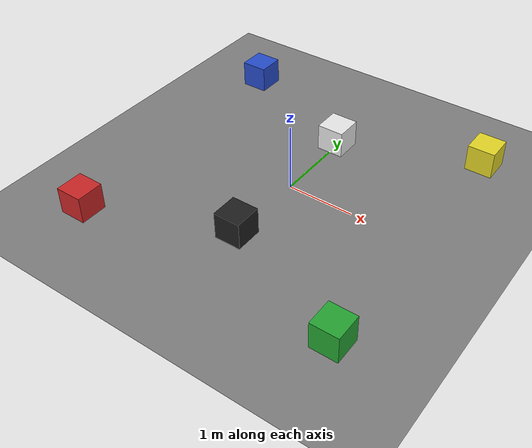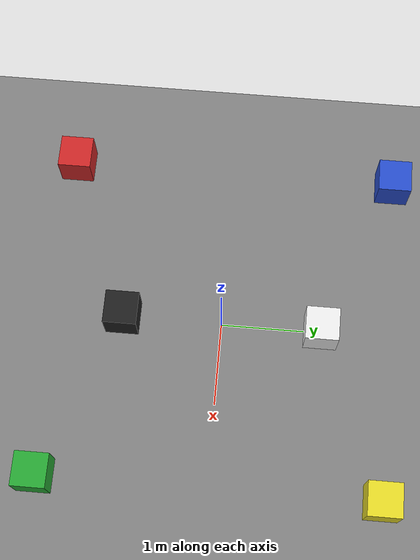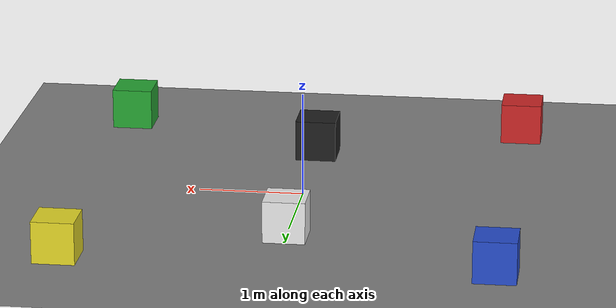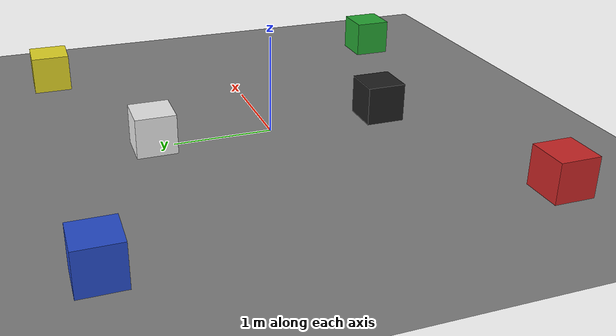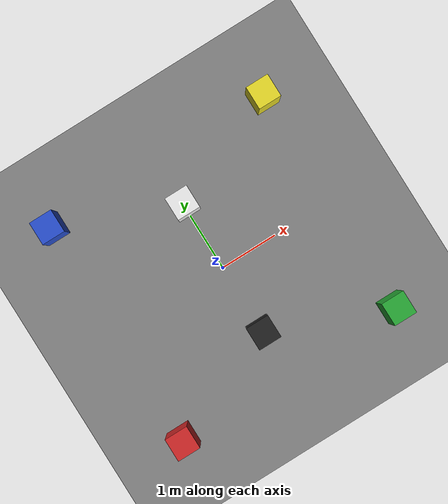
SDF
<?xml version="1.0"?>
<sdf version="1.6">
  <world name="landmark_world">
    <light type="directional" name="sun">
      <cast_shadows>false</cast_shadows>
      <pose>0 0 10 0 0 0</pose>
      <diffuse>0.9 0.9 0.9 1</diffuse>
      <specular>0.1 0.1 0.1 1</specular>
      <direction>-0.5 0.1 -0.9</direction>
    </light>

    <model name="ground_plane">
      <static>true</static>
      <link name="link">
        <collision name="c"><geometry><plane><normal>0 0 1</normal><size>8 8</size></plane></geometry></collision>
        <visual name="v">
          <geometry><plane><normal>0 0 1</normal><size>8 8</size></plane></geometry>
          <material><ambient>0.5 0.5 0.5 1</ambient><diffuse>0.5 0.5 0.5 1</diffuse></material>
        </visual>
      </link>
    </model>

    <model name="landmark_red">
      <static>true</static><pose>-2 -2 0.2 0 0 0</pose>
      <link name="link">
        <collision name="c"><geometry><box><size>0.4 0.4 0.4</size></box></geometry></collision>
        <visual name="v"><geometry><box><size>0.4 0.4 0.4</size></box></geometry>
          <material><script><name>Gazebo/Red</name></script></material></visual>
      </link>
    </model>

    <model name="landmark_green">
      <static>true</static><pose>2 -2 0.2 0 0 0</pose>
      <link name="link">
        <collision name="c"><geometry><box><size>0.4 0.4 0.4</size></box></geometry></collision>
        <visual name="v"><geometry><box><size>0.4 0.4 0.4</size></box></geometry>
          <material><script><name>Gazebo/Green</name></script></material></visual>
      </link>
    </model>

    <model name="landmark_blue">
      <static>true</static><pose>-2 2 0.2 0 0 0</pose>
      <link name="link">
        <collision name="c"><geometry><box><size>0.4 0.4 0.4</size></box></geometry></collision>
        <visual name="v"><geometry><box><size>0.4 0.4 0.4</size></box></geometry>
          <material><script><name>Gazebo/Blue</name></script></material></visual>
      </link>
    </model>

    <model name="landmark_yellow">
      <static>true</static><pose>2 2 0.2 0 0 0</pose>
      <link name="link">
        <collision name="c"><geometry><box><size>0.4 0.4 0.4</size></box></geometry></collision>
        <visual name="v"><geometry><box><size>0.4 0.4 0.4</size></box></geometry>
          <material><script><name>Gazebo/Yellow</name></script></material></visual>
      </link>
    </model>

    <model name="obstacle_white">
      <static>false</static>
      <pose>0 1.2 0.2 0 0 3.1415926</pose>
      <link name="link">
        <inertial>
          <mass>1.0</mass>
          <inertia><ixx>0.0267</ixx><ixy>0</ixy><ixz>0</ixz>
                   <iyy>0.0267</iyy><iyz>0</iyz><izz>0.0267</izz></inertia>
        </inertial>
        <collision name="c"><geometry><box><size>0.4 0.4 0.4</size></box></geometry></collision>
        <visual name="v"><geometry><box><size>0.4 0.4 0.4</size></box></geometry>
          <material><script><name>Gazebo/White</name></script></material></visual>
      </link>
    </model>

    <model name="obstacle_black">
      <static>false</static>
      <pose>0 -1.2 0.2 0 0 0</pose>
      <link name="link">
        <inertial>
          <mass>1.0</mass>
          <inertia><ixx>0.0267</ixx><ixy>0</ixy><ixz>0</ixz>
                   <iyy>0.0267</iyy><iyz>0</iyz><izz>0.0267</izz></inertia>
        </inertial>
        <collision name="c"><geometry><box><size>0.4 0.4 0.4</size></box></geometry></collision>
        <visual name="v"><geometry><box><size>0.4 0.4 0.4</size></box></geometry>
          <material><script><name>Gazebo/Black</name></script></material></visual>
      </link>
    </model>

    <plugin name="gazebo_ros_state" filename="libgazebo_ros_state.so">
      <update_rate>50.0</update_rate>
      <!-- Without this namespace the plugin advertises /model_states and /link_states at
           the root, while every consumer here subscribes to /gazebo/model_states. -->
      <ros>
        <namespace>/gazebo</namespace>
      </ros>
    </plugin>

    <physics type="ode">
      <max_step_size>0.001</max_step_size>
      <real_time_update_rate>1000</real_time_update_rate>
    </physics>
    <gui fullscreen="0">
      <camera name="user_camera">
        <pose>0.0 -3.0 7.0 0 0.9 0</pose>
      </camera>
    </gui>

  </world>
</sdf>
